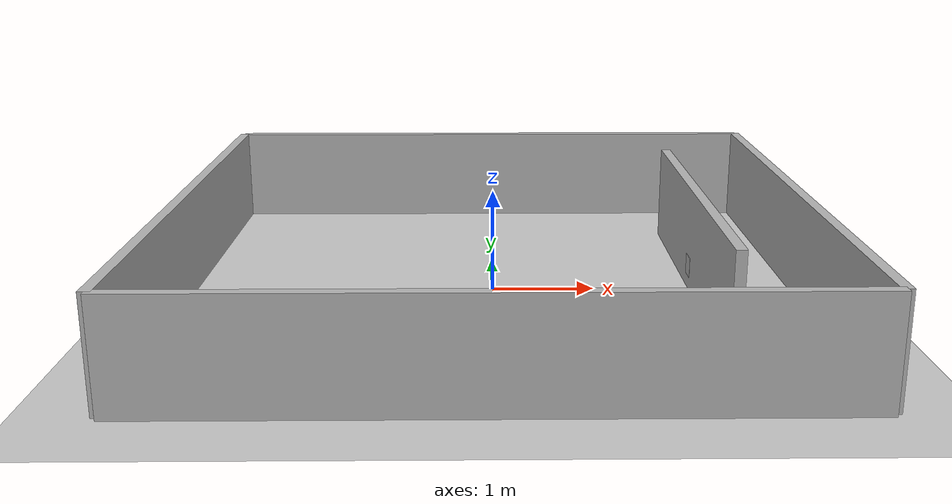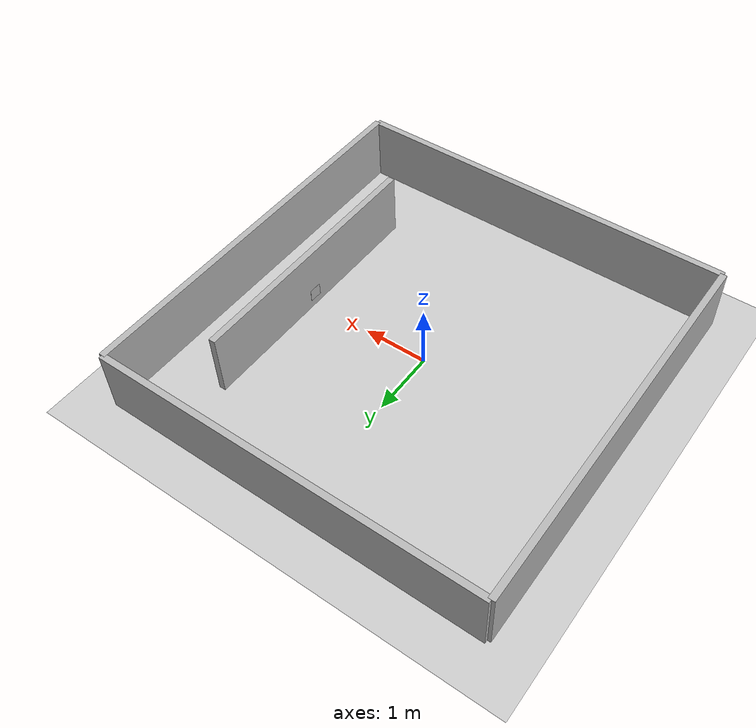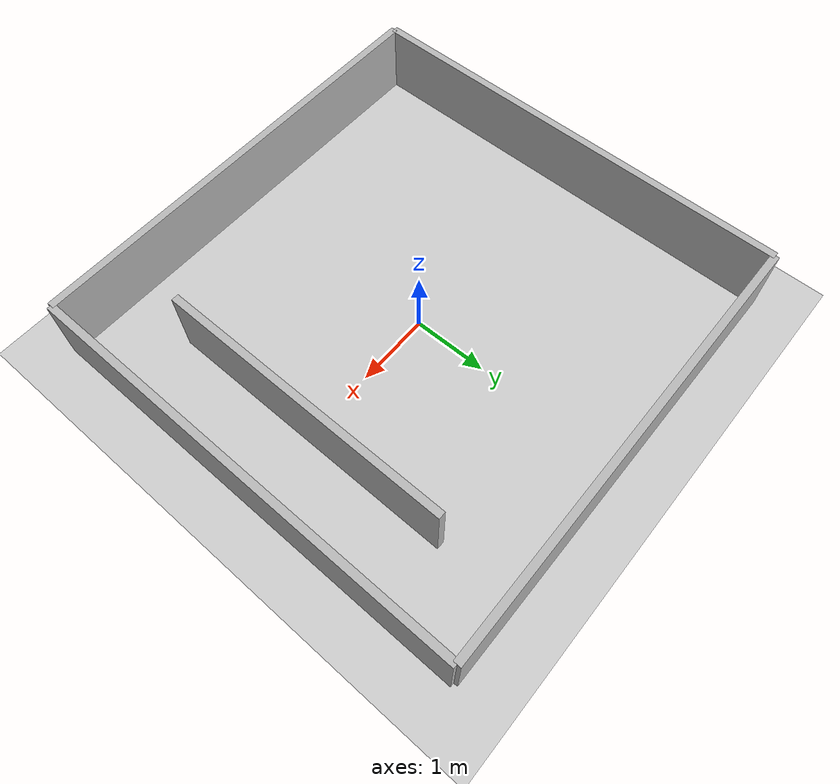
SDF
<?xml version="1.0"?>
<sdf version="1.6"><world name="smoke_tags">
<include><uri>model://sun</uri></include><include><uri>model://ground_plane</uri></include>
<physics type="ode" name="physics"><max_step_size>0.001</max_step_size><real_time_update_rate>1000</real_time_update_rate></physics>
<model name="wall"><static>true</static><pose>2 0 0.5 0 0 0</pose><link name="wall"><collision name="wall"><geometry><box><size>0.1 4 1</size></box></geometry></collision><visual name="wall"><geometry><box><size>0.1 4 1</size></box></geometry></visual></link></model>
<model name="tag9"><static>true</static><pose>1.94 0 0.24 0 1.570796 3.141593</pose><link name="tag"><visual name="tag"><geometry><box><size>0.2 0.2 0.002</size></box></geometry><material><script><uri>model://Apriltag36_11_00009/materials/scripts</uri><uri>model://Apriltag36_11_00009/materials/textures</uri><name>Apriltag36_11_00009</name></script></material></visual></link></model>
<model name="back"><static>true</static><pose>-3 0 0.5 0 0 0</pose><link name="wall"><collision name="wall"><geometry><box><size>0.1 6 1</size></box></geometry></collision><visual name="wall"><geometry><box><size>0.1 6 1</size></box></geometry></visual></link></model>
<model name="left"><static>true</static><pose>0 3 0.5 0 0 0</pose><link name="wall"><collision name="wall"><geometry><box><size>6 0.1 1</size></box></geometry></collision><visual name="wall"><geometry><box><size>6 0.1 1</size></box></geometry></visual></link></model>
<model name="right"><static>true</static><pose>0 -3 0.5 0 0 0</pose><link name="wall"><collision name="wall"><geometry><box><size>6 0.1 1</size></box></geometry></collision><visual name="wall"><geometry><box><size>6 0.1 1</size></box></geometry></visual></link></model>
<model name="far"><static>true</static><pose>3 0 0.5 0 0 0</pose><link name="wall"><collision name="wall"><geometry><box><size>0.1 6 1</size></box></geometry></collision><visual name="wall"><geometry><box><size>0.1 6 1</size></box></geometry></visual></link></model>
</world></sdf>
